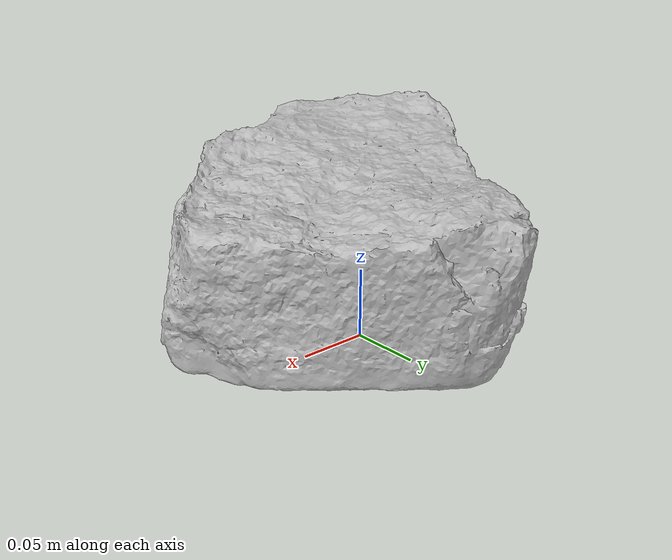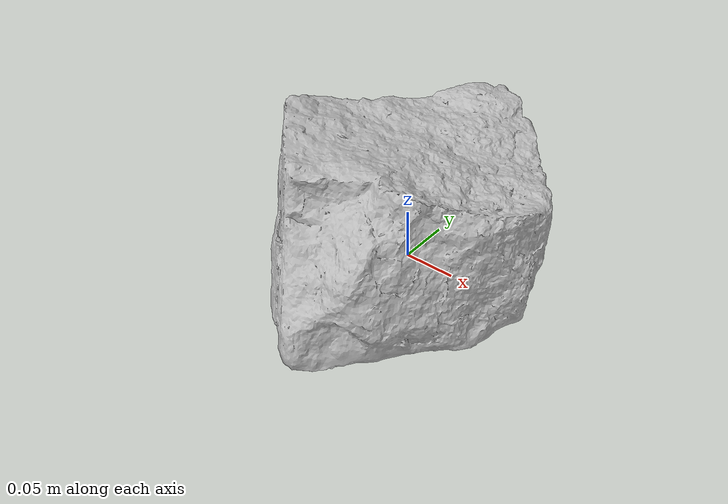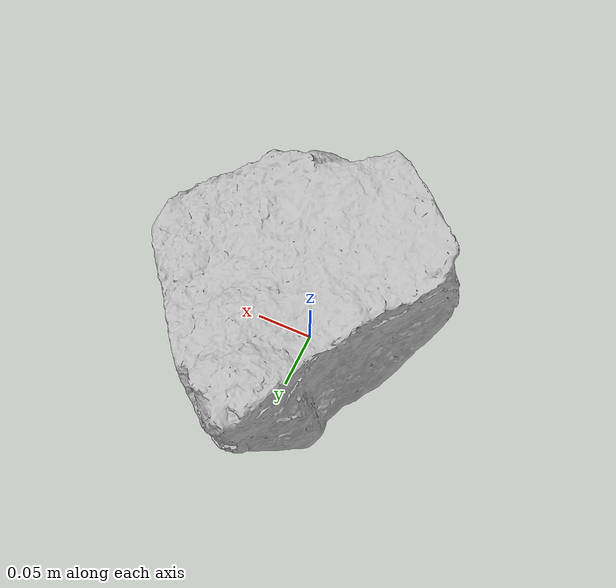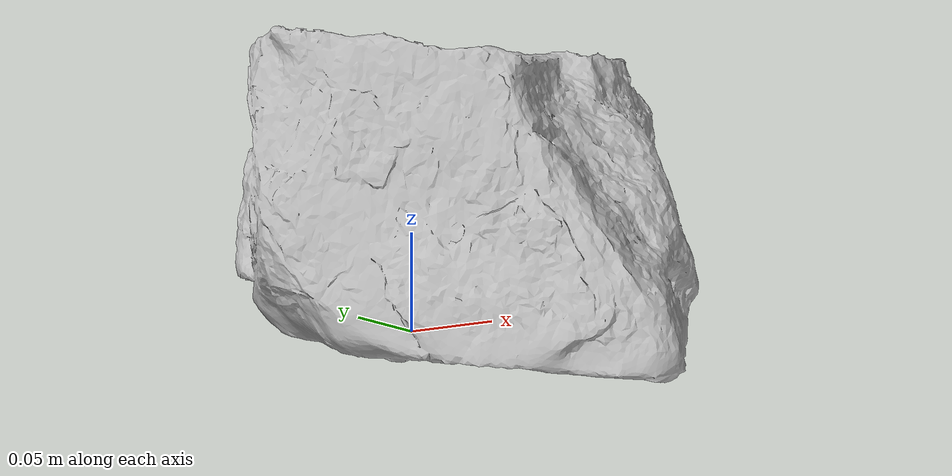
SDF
<?xml version="1.0" ?>
<sdf version="1.9">

  <model name="rock_1">

    <static>true</static>

    <link name="rock_link">

      <visual name="visual">
        <geometry>
          <mesh>
            <uri>meshes/rock_1.glb</uri>
          </mesh>
        </geometry>
      </visual>

      <collision name="collision">
        <geometry>
          <mesh>
            <uri>meshes/rock_1.stl</uri>
          </mesh>
        </geometry>
      </collision>

    </link>

  </model>

</sdf>
